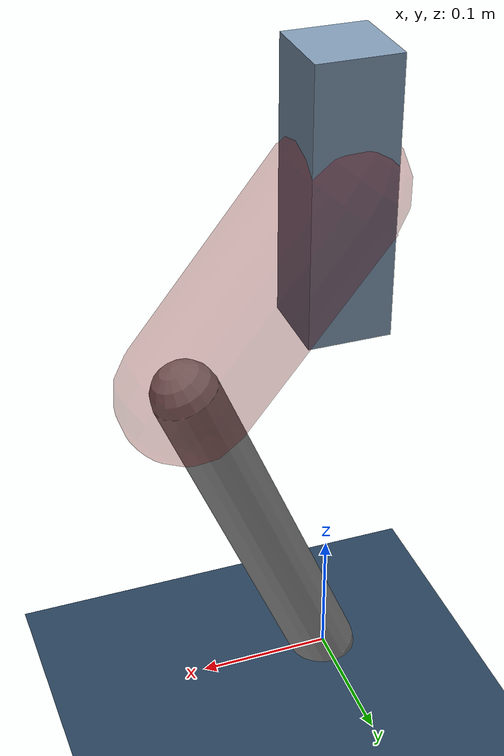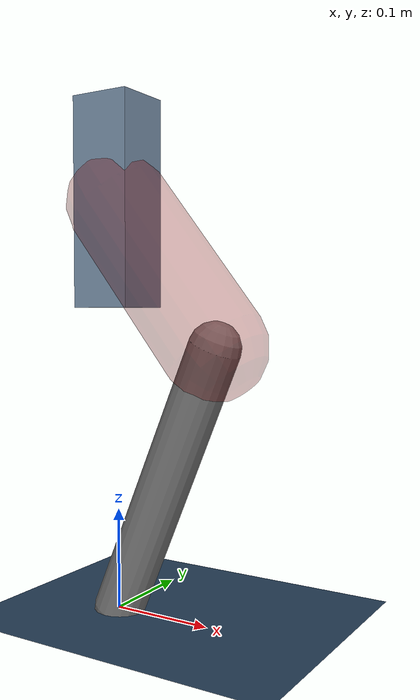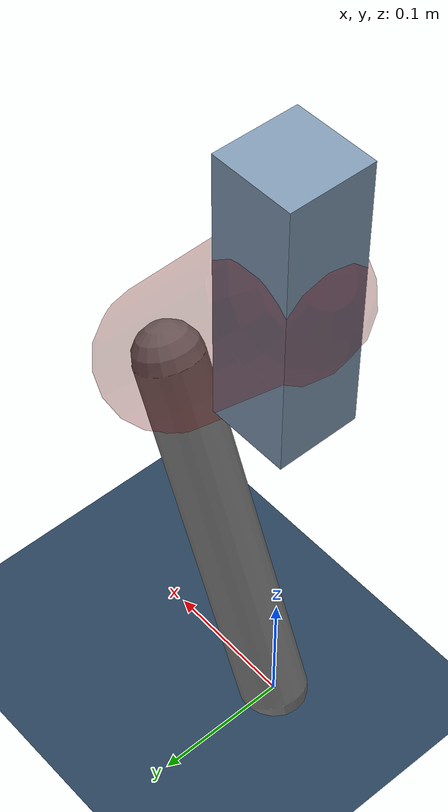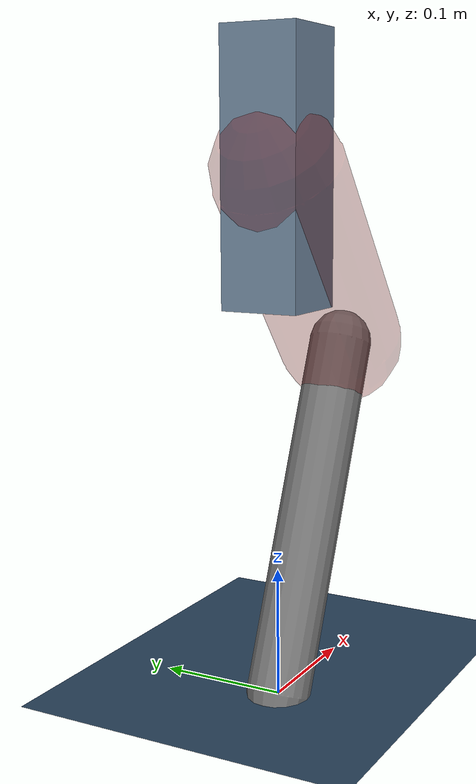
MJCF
<mujoco model="Hopper2D">
	<compiler inertiafromgeom="true" angle="radian" />
	<option timestep="0.001" integrator="implicit" cone="elliptic" solver="Newton" tolerance="1e-10" />

	<default>
		<geom contype="1" conaffinity="1" condim="3" friction="2 0.005 0.0001" solref="0.005 1" />
		<joint limited="true" damping="0.1" />
	</default>

	<asset>
		<texture name="skybox" type="skybox" builtin="gradient" rgb1=".4 .6 .8" rgb2="0 0 0" width="800" height="800" />
		<texture name="grid" type="2d" builtin="checker" rgb1=".1 .2 .3" rgb2=".2 .3 .4" width="300" height="300" mark="edge" markrgb=".2 .3 .4" />
		<material name="ground" texture="grid" texrepeat="1 1" texuniform="true" reflectance="0.1" />
		<material name="leg" rgba="0.5 0.6 0.7 1" />
	</asset>

	<worldbody>

		<geom name="floor" type="plane" size="5 5 0.25" material="ground" />

		<light directional="false" diffuse="0.8 0.8 0.8" specular="0.3 0.3 0.3" pos="0 0 2" dir="0 0 -1" />
		<light mode="targetbodycom" target="base" directional="false" diffuse="0.8 0.8 0.8" specular="0.3 0.3 0.3" pos="0 0 2" dir="0 0 -1" />

		<camera name="fixed" pos="0 -2 1" xyaxes="1 0 0 0 0 1" />
		<camera name="tracking" mode="trackcom" pos="0 -3 1" />

		<body name="root" pos="0 0 0.399411059804139">
			<joint name="slide_x" type="slide" axis="1 0 0" range="-100 100" />
			<joint name="slide_z" type="slide" axis="0 0 1" range="0 10" />

			<body name="base" pos="0 0 0">
				<geom name="torso" type="box" size="0.03 0.03 0.1" mass="1.9300000000000002" material="leg" />

				<body name="link1" pos="0 0 0" euler="0 0.9014286840703618 0">
					<joint type="hinge" axis="0 -1 0" pos="0 0 0" name="hinge1" limited="true" range="-3.14 3.14" stiffness="0" damping="0.1" />
					<geom name="thigh" type="capsule" fromto="0 0 0 0.1746594946815764 0 0" size="0.05" rgba="0.5 0 0 0.3" mass="0.6675827872357835" />

					<body name="link2" pos="0.1746594946815764 0 0" euler="0 1.0609866125498857 0">
						<joint type="hinge" axis="0 -1 0" pos="0 0 0" name="hinge2" limited="true" range="-3.14 3.14" stiffness="0" damping="0.1" />
						<geom name="shank" type="capsule" fromto="0 0 0 0.28393679700245056 0 0" size="0.025" mass="0.47034943760196046" />

					</body>
				</body>
			</body>
		</body>
	</worldbody>

	<actuator>
		<motor name="torque1" joint="hinge1" ctrlrange="-89.8185866685357 89.8185866685357" ctrllimited="true" gear="1" />
		<motor name="torque2" joint="hinge2" ctrlrange="-16.949121190428 16.949121190428" ctrllimited="true" gear="1" />
	</actuator>
</mujoco>
